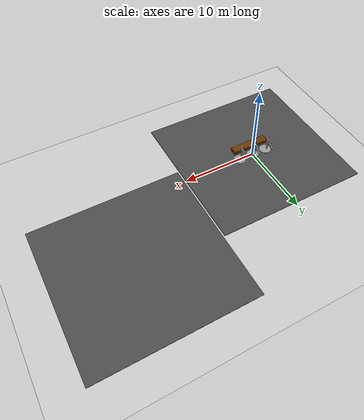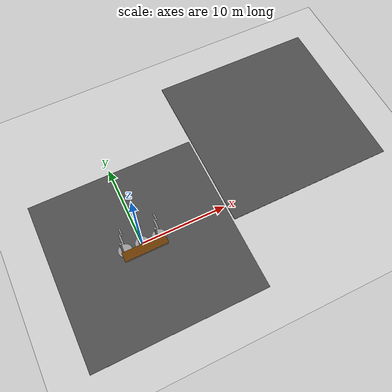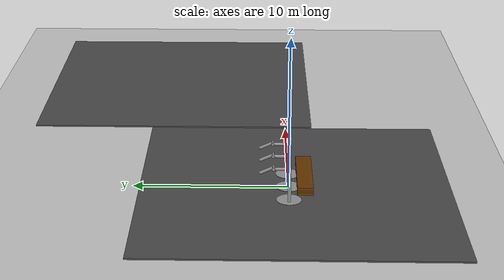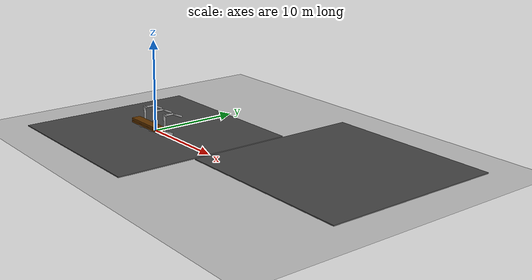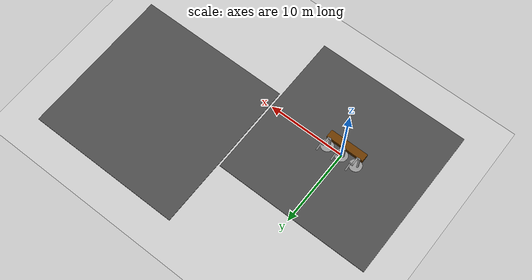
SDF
<sdf version="1.6">
 <world name="default">
  <light name="sun" type="directional">
   <pose>0 0 10 0 -0 0</pose>
   <diffuse>0.8 0.8 0.8 1</diffuse>
   <specular>0.2 0.2 0.2 1</specular>
   <attenuation>
    <range>1000</range>
    <constant>0.9</constant>
    <linear>0.01</linear>
    <quadratic>0.001</quadratic>
   </attenuation>
   <direction>-0.5 0.1 -0.9</direction>
  </light>
  <model name="ground_plane">
   <static>1</static>
   <link name="link">
    <collision name="collision">
     <geometry><plane><normal>0 0 1</normal><size>100 100</size></plane></geometry>
     <surface><friction><ode><mu>100</mu><mu2>50</mu2></ode></friction></surface>
    </collision>
    <visual name="visual">
     <cast_shadows>0</cast_shadows>
     <geometry><plane><normal>0 0 1</normal><size>100 100</size></plane></geometry>
     <material>
      <script><uri>file://media/materials/scripts/gazebo.material</uri><name>Gazebo/Grey</name></script>
     </material>
    </visual>
   </link>
  </model>
  <model name="pendulum_thick_mud">
   <link name="base">
    <inertial>
     <mass>100</mass>
     <inertia><ixx>1</ixx><ixy>0</ixy><ixz>0</ixz><iyy>1</iyy><iyz>0</iyz><izz>1</izz></inertia>
    </inertial>
    <visual name="vis_plate_on_ground">
     <pose>0 0 0.01 0 -0 0</pose>
     <geometry><cylinder><radius>0.8</radius><length>0.02</length></cylinder></geometry>
     <material>
      <script><uri>file://media/materials/scripts/gazebo.material</uri><name>Gazebo/Grey</name></script>
     </material>
    </visual>
    <visual name="vis_pole">
     <pose>-0.275 0 1.1 0 -0 0</pose>
     <geometry><box><size>0.2 0.2 2.2</size></box></geometry>
     <material>
      <script><uri>file://media/materials/scripts/gazebo.material</uri><name>Gazebo/Grey</name></script>
     </material>
    </visual>
    <collision name="col_plate_on_ground">
     <pose>0 0 0.01 0 -0 0</pose>
     <geometry><cylinder><radius>0.8</radius><length>0.02</length></cylinder></geometry>
    </collision>
    <collision name="col_pole">
     <pose>-0.275 0 1.1 0 -0 0</pose>
     <geometry><box><size>0.2 0.2 2.2</size></box></geometry>
    </collision>
   </link>
   <link name="upper_link">
    <pose>0 0 2.1 -1.5708 0 0</pose>
    <inertial>
     <pose>0 0 0.5 0 -0 0</pose>
     <inertia><ixx>1</ixx><ixy>0</ixy><ixz>0</ixz><iyy>1</iyy><iyz>0</iyz><izz>1</izz></inertia>
     <mass>1</mass>
    </inertial>
    <visual name="vis_upper_joint">
     <pose>-0.05 0 0 3.14159 1.57079 3.14159</pose>
     <geometry><cylinder><radius>0.1</radius><length>0.3</length></cylinder></geometry>
     <material>
      <script><uri>file://media/materials/scripts/gazebo.material</uri><name>Gazebo/Grey</name></script>
     </material>
    </visual>
    <visual name="vis_lower_joint">
     <pose>0 0 1 3.14159 1.57079 3.14159</pose>
     <geometry><cylinder><radius>0.1</radius><length>0.2</length></cylinder></geometry>
     <material>
      <script><uri>file://media/materials/scripts/gazebo.material</uri><name>Gazebo/Grey</name></script>
     </material>
    </visual>
    <visual name="vis_cylinder">
     <pose>0 0 0.5 0 -0 0</pose>
     <geometry><cylinder><radius>0.1</radius><length>0.9</length></cylinder></geometry>
     <material>
      <script><uri>file://media/materials/scripts/gazebo.material</uri><name>Gazebo/Grey</name></script>
     </material>
    </visual>
    <collision name="col_upper_joint">
     <pose>-0.05 0 0 3.14159 1.57079 3.14159</pose>
     <geometry><cylinder><radius>0.1</radius><length>0.3</length></cylinder></geometry>
    </collision>
    <collision name="col_lower_joint">
     <pose>0 0 1 3.14159 1.57079 3.14159</pose>
     <geometry><cylinder><radius>0.1</radius><length>0.2</length></cylinder></geometry>
    </collision>
    <collision name="col_cylinder">
     <pose>0 0 0.5 0 -0 0</pose>
     <geometry><cylinder><radius>0.1</radius><length>0.9</length></cylinder></geometry>
    </collision>
   </link>
   <link name="lower_link">
    <pose>0.25 1 2.1 -2 0 0</pose>
    <inertial>
     <pose>0 0 0.5 0 -0 0</pose>
     <inertia><ixx>1</ixx><ixy>0</ixy><ixz>0</ixz><iyy>1</iyy><iyz>0</iyz><izz>1</izz></inertia>
     <mass>1</mass>
    </inertial>
    <visual name="vis_lower_joint">
     <pose>0 0 0 3.14159 1.57079 3.14159</pose>
     <geometry><cylinder><radius>0.08</radius><length>0.3</length></cylinder></geometry>
     <material>
      <script><uri>file://media/materials/scripts/gazebo.material</uri><name>Gazebo/Grey</name></script>
     </material>
    </visual>
    <visual name="vis_cylinder">
     <pose>0 0 0.5 0 -0 0</pose>
     <geometry><cylinder><radius>0.1</radius><length>0.9</length></cylinder></geometry>
     <material>
      <script><uri>file://media/materials/scripts/gazebo.material</uri><name>Gazebo/Grey</name></script>
     </material>
    </visual>
    <collision name="col_lower_joint">
     <pose>0 0 0 3.14159 1.57079 3.14159</pose>
     <geometry><cylinder><radius>0.08</radius><length>0.3</length></cylinder></geometry>
    </collision>
    <collision name="col_cylinder">
     <pose>0 0 0.5 0 -0 0</pose>
     <geometry><cylinder><radius>0.1</radius><length>0.9</length></cylinder></geometry>
    </collision>
   </link>
   <joint name="upper_joint" type="revolute">
    <parent>base</parent>
    <child>upper_link</child>
    <axis>
     <xyz>1 0 0</xyz>
     <use_parent_model_frame>0</use_parent_model_frame>
     <limit><lower>-1e+16</lower><upper>1e+16</upper></limit>
     <dynamics><spring_reference>0</spring_reference><spring_stiffness>0</spring_stiffness></dynamics>
    </axis>
   </joint>
   <joint name="lower_joint" type="revolute">
    <parent>upper_link</parent>
    <child>lower_link</child>
    <axis>
     <xyz>1 0 0</xyz>
     <use_parent_model_frame>0</use_parent_model_frame>
     <limit><lower>-1e+16</lower><upper>1e+16</upper></limit>
     <dynamics><spring_reference>0</spring_reference><spring_stiffness>0</spring_stiffness></dynamics>
    </axis>
   </joint>
   <pose>-2.00121 -0.000308 0.050016 1.1e-05 -1.3e-05 -0.007501</pose>
  </model>
  <model name="pendulum_thin_mud">
   <link name="base">
    <inertial>
     <mass>100</mass>
     <inertia><ixx>1</ixx><ixy>0</ixy><ixz>0</ixz><iyy>1</iyy><iyz>0</iyz><izz>1</izz></inertia>
    </inertial>
    <visual name="vis_plate_on_ground">
     <pose>0 0 0.01 0 -0 0</pose>
     <geometry><cylinder><radius>0.8</radius><length>0.02</length></cylinder></geometry>
     <material>
      <script><uri>file://media/materials/scripts/gazebo.material</uri><name>Gazebo/Grey</name></script>
     </material>
    </visual>
    <visual name="vis_pole">
     <pose>-0.275 0 1.1 0 -0 0</pose>
     <geometry><box><size>0.2 0.2 2.2</size></box></geometry>
     <material>
      <script><uri>file://media/materials/scripts/gazebo.material</uri><name>Gazebo/Grey</name></script>
     </material>
    </visual>
    <collision name="col_plate_on_ground">
     <pose>0 0 0.01 0 -0 0</pose>
     <geometry><cylinder><radius>0.8</radius><length>0.02</length></cylinder></geometry>
    </collision>
    <collision name="col_pole">
     <pose>-0.275 0 1.1 0 -0 0</pose>
     <geometry><box><size>0.2 0.2 2.2</size></box></geometry>
    </collision>
   </link>
   <link name="upper_link">
    <pose>0 0 2.1 -1.5708 0 0</pose>
    <inertial>
     <pose>0 0 0.5 0 -0 0</pose>
     <inertia><ixx>1</ixx><ixy>0</ixy><ixz>0</ixz><iyy>1</iyy><iyz>0</iyz><izz>1</izz></inertia>
     <mass>1</mass>
    </inertial>
    <visual name="vis_upper_joint">
     <pose>-0.05 0 0 3.14159 1.57079 3.14159</pose>
     <geometry><cylinder><radius>0.1</radius><length>0.3</length></cylinder></geometry>
     <material>
      <script><uri>file://media/materials/scripts/gazebo.material</uri><name>Gazebo/Grey</name></script>
     </material>
    </visual>
    <visual name="vis_lower_joint">
     <pose>0 0 1 3.14159 1.57079 3.14159</pose>
     <geometry><cylinder><radius>0.1</radius><length>0.2</length></cylinder></geometry>
     <material>
      <script><uri>file://media/materials/scripts/gazebo.material</uri><name>Gazebo/Grey</name></script>
     </material>
    </visual>
    <visual name="vis_cylinder">
     <pose>0 0 0.5 0 -0 0</pose>
     <geometry><cylinder><radius>0.1</radius><length>0.9</length></cylinder></geometry>
     <material>
      <script><uri>file://media/materials/scripts/gazebo.material</uri><name>Gazebo/Grey</name></script>
     </material>
    </visual>
    <collision name="col_upper_joint">
     <pose>-0.05 0 0 3.14159 1.57079 3.14159</pose>
     <geometry><cylinder><radius>0.1</radius><length>0.3</length></cylinder></geometry>
    </collision>
    <collision name="col_lower_joint">
     <pose>0 0 1 3.14159 1.57079 3.14159</pose>
     <geometry><cylinder><radius>0.1</radius><length>0.2</length></cylinder></geometry>
    </collision>
    <collision name="col_cylinder">
     <pose>0 0 0.5 0 -0 0</pose>
     <geometry><cylinder><radius>0.1</radius><length>0.9</length></cylinder></geometry>
    </collision>
   </link>
   <link name="lower_link">
    <pose>0.25 1 2.1 -2 0 0</pose>
    <inertial>
     <pose>0 0 0.5 0 -0 0</pose>
     <inertia><ixx>1</ixx><ixy>0</ixy><ixz>0</ixz><iyy>1</iyy><iyz>0</iyz><izz>1</izz></inertia>
     <mass>1</mass>
    </inertial>
    <visual name="vis_lower_joint">
     <pose>0 0 0 3.14159 1.57079 3.14159</pose>
     <geometry><cylinder><radius>0.08</radius><length>0.3</length></cylinder></geometry>
     <material>
      <script><uri>file://media/materials/scripts/gazebo.material</uri><name>Gazebo/Grey</name></script>
     </material>
    </visual>
    <visual name="vis_cylinder">
     <pose>0 0 0.5 0 -0 0</pose>
     <geometry><cylinder><radius>0.1</radius><length>0.9</length></cylinder></geometry>
     <material>
      <script><uri>file://media/materials/scripts/gazebo.material</uri><name>Gazebo/Grey</name></script>
     </material>
    </visual>
    <collision name="col_lower_joint">
     <pose>0 0 0 3.14159 1.57079 3.14159</pose>
     <geometry><cylinder><radius>0.08</radius><length>0.3</length></cylinder></geometry>
    </collision>
    <collision name="col_cylinder">
     <pose>0 0 0.5 0 -0 0</pose>
     <geometry><cylinder><radius>0.1</radius><length>0.9</length></cylinder></geometry>
    </collision>
   </link>
   <joint name="upper_joint" type="revolute">
    <parent>base</parent>
    <child>upper_link</child>
    <axis>
     <xyz>1 0 0</xyz>
     <use_parent_model_frame>0</use_parent_model_frame>
     <limit><lower>-1e+16</lower><upper>1e+16</upper></limit>
     <dynamics><spring_reference>0</spring_reference><spring_stiffness>0</spring_stiffness></dynamics>
    </axis>
   </joint>
   <joint name="lower_joint" type="revolute">
    <parent>upper_link</parent>
    <child>lower_link</child>
    <axis>
     <xyz>1 0 0</xyz>
     <use_parent_model_frame>0</use_parent_model_frame>
     <limit><lower>-1e+16</lower><upper>1e+16</upper></limit>
     <dynamics><spring_reference>0</spring_reference><spring_stiffness>0</spring_stiffness></dynamics>
    </axis>
   </joint>
   <pose>-0.001613 -0.000877 0.050012 -4e-06 -1.5e-05 -0.009462</pose>
  </model>
  <model name="pendulum_no_mud">
   <link name="base">
    <inertial>
     <mass>100</mass>
     <inertia><ixx>1</ixx><ixy>0</ixy><ixz>0</ixz><iyy>1</iyy><iyz>0</iyz><izz>1</izz></inertia>
    </inertial>
    <visual name="vis_plate_on_ground">
     <pose>0 0 0.01 0 -0 0</pose>
     <geometry><cylinder><radius>0.8</radius><length>0.02</length></cylinder></geometry>
     <material>
      <script><uri>file://media/materials/scripts/gazebo.material</uri><name>Gazebo/Grey</name></script>
     </material>
    </visual>
    <visual name="vis_pole">
     <pose>-0.275 0 1.1 0 -0 0</pose>
     <geometry><box><size>0.2 0.2 2.2</size></box></geometry>
     <material>
      <script><uri>file://media/materials/scripts/gazebo.material</uri><name>Gazebo/Grey</name></script>
     </material>
    </visual>
    <collision name="col_plate_on_ground">
     <pose>0 0 0.01 0 -0 0</pose>
     <geometry><cylinder><radius>0.8</radius><length>0.02</length></cylinder></geometry>
    </collision>
    <collision name="col_pole">
     <pose>-0.275 0 1.1 0 -0 0</pose>
     <geometry><box><size>0.2 0.2 2.2</size></box></geometry>
    </collision>
   </link>
   <link name="upper_link">
    <pose>0 0 2.1 -1.5708 0 0</pose>
    <inertial>
     <pose>0 0 0.5 0 -0 0</pose>
     <inertia><ixx>1</ixx><ixy>0</ixy><ixz>0</ixz><iyy>1</iyy><iyz>0</iyz><izz>1</izz></inertia>
     <mass>1</mass>
    </inertial>
    <visual name="vis_upper_joint">
     <pose>-0.05 0 0 3.14159 1.57079 3.14159</pose>
     <geometry><cylinder><radius>0.1</radius><length>0.3</length></cylinder></geometry>
     <material>
      <script><uri>file://media/materials/scripts/gazebo.material</uri><name>Gazebo/Grey</name></script>
     </material>
    </visual>
    <visual name="vis_lower_joint">
     <pose>0 0 1 3.14159 1.57079 3.14159</pose>
     <geometry><cylinder><radius>0.1</radius><length>0.2</length></cylinder></geometry>
     <material>
      <script><uri>file://media/materials/scripts/gazebo.material</uri><name>Gazebo/Grey</name></script>
     </material>
    </visual>
    <visual name="vis_cylinder">
     <pose>0 0 0.5 0 -0 0</pose>
     <geometry><cylinder><radius>0.1</radius><length>0.9</length></cylinder></geometry>
     <material>
      <script><uri>file://media/materials/scripts/gazebo.material</uri><name>Gazebo/Grey</name></script>
     </material>
    </visual>
    <collision name="col_upper_joint">
     <pose>-0.05 0 0 3.14159 1.57079 3.14159</pose>
     <geometry><cylinder><radius>0.1</radius><length>0.3</length></cylinder></geometry>
    </collision>
    <collision name="col_lower_joint">
     <pose>0 0 1 3.14159 1.57079 3.14159</pose>
     <geometry><cylinder><radius>0.1</radius><length>0.2</length></cylinder></geometry>
    </collision>
    <collision name="col_cylinder">
     <pose>0 0 0.5 0 -0 0</pose>
     <geometry><cylinder><radius>0.1</radius><length>0.9</length></cylinder></geometry>
    </collision>
   </link>
   <link name="lower_link">
    <pose>0.25 1 2.1 -2 0 0</pose>
    <inertial>
     <pose>0 0 0.5 0 -0 0</pose>
     <inertia><ixx>1</ixx><ixy>0</ixy><ixz>0</ixz><iyy>1</iyy><iyz>0</iyz><izz>1</izz></inertia>
     <mass>1</mass>
    </inertial>
    <visual name="vis_lower_joint">
     <pose>0 0 0 3.14159 1.57079 3.14159</pose>
     <geometry><cylinder><radius>0.08</radius><length>0.3</length></cylinder></geometry>
     <material>
      <script><uri>file://media/materials/scripts/gazebo.material</uri><name>Gazebo/Grey</name></script>
     </material>
    </visual>
    <visual name="vis_cylinder">
     <pose>0 0 0.5 0 -0 0</pose>
     <geometry><cylinder><radius>0.1</radius><length>0.9</length></cylinder></geometry>
     <material>
      <script><uri>file://media/materials/scripts/gazebo.material</uri><name>Gazebo/Grey</name></script>
     </material>
    </visual>
    <collision name="col_lower_joint">
     <pose>0 0 0 3.14159 1.57079 3.14159</pose>
     <geometry><cylinder><radius>0.08</radius><length>0.3</length></cylinder></geometry>
    </collision>
    <collision name="col_cylinder">
     <pose>0 0 0.5 0 -0 0</pose>
     <geometry><cylinder><radius>0.1</radius><length>0.9</length></cylinder></geometry>
    </collision>
   </link>
   <joint name="upper_joint" type="revolute">
    <parent>base</parent>
    <child>upper_link</child>
    <axis>
     <xyz>1 0 0</xyz>
     <use_parent_model_frame>0</use_parent_model_frame>
     <limit><lower>-1e+16</lower><upper>1e+16</upper></limit>
     <dynamics><spring_reference>0</spring_reference><spring_stiffness>0</spring_stiffness></dynamics>
    </axis>
   </joint>
   <joint name="lower_joint" type="revolute">
    <parent>upper_link</parent>
    <child>lower_link</child>
    <axis>
     <xyz>1 0 0</xyz>
     <use_parent_model_frame>0</use_parent_model_frame>
     <limit><lower>-1e+16</lower><upper>1e+16</upper></limit>
     <dynamics><spring_reference>0</spring_reference><spring_stiffness>0</spring_stiffness></dynamics>
    </axis>
   </joint>
   <pose>1.99594 -0.00099 0.050002 7e-06 1.5e-05 -0.014104</pose>
  </model>
  <model name="mud_pit_thin">
   <pose>0 -1 0.7 0 -0 0</pose>
   <static>1</static>
   <link name="link">
    <collision name="collision">
     <geometry><box><size>5 1 0.2</size></box></geometry>
     <surface><contact><collide_without_contact>1</collide_without_contact></contact></surface>
    </collision>
    <visual name="visual">
     <geometry><box><size>5 1 0.2</size></box></geometry>
     <material><ambient>0.2 0.2 0.2 1</ambient><diffuse>0.421 0.225 0 1</diffuse></material>
    </visual>
    <sensor name="mud_contact" type="contact">
     <always_on>1</always_on>
     <update_rate>1000</update_rate>
     <contact><collision>collision</collision><topic>__default_topic__</topic></contact>
    </sensor>
   </link>
   <plugin name="gazebo_mud" filename="libMudPlugin.so">
    <contact_sensor_name>link/mud_contact</contact_sensor_name>
    <stiffness>0.0</stiffness>
    <damping>1.0</damping>
    <link_name>pendulum_thin_mud::lower_link</link_name>
    <link_name>pendulum_thick_mud::lower_link</link_name>
   </plugin>
  </model>
  <model name="mud_pit_thick">
   <pose>0 -1 1 0 -0 0</pose>
   <static>1</static>
   <link name="link">
    <collision name="collision">
     <geometry><box><size>5 1 0.2</size></box></geometry>
     <surface><contact><collide_without_contact>1</collide_without_contact></contact></surface>
    </collision>
    <visual name="visual">
     <geometry><box><size>5 1 0.2</size></box></geometry>
     <material><ambient>0.2 0.2 0.2 1</ambient><diffuse>0.421 0.225 0 1</diffuse></material>
    </visual>
    <sensor name="mud_contact" type="contact">
     <always_on>1</always_on>
     <update_rate>1000</update_rate>
     <contact><collision>collision</collision><topic>__default_topic__</topic></contact>
    </sensor>
   </link>
   <plugin name="gazebo_mud" filename="libMudPlugin.so">
    <contact_sensor_name>link/mud_contact</contact_sensor_name>
    <stiffness>0.0</stiffness>
    <damping>10.0</damping>
    <link_name>pendulum_thick_mud::lower_link</link_name>
   </plugin>
  </model>
  <gravity>0 0 -9.8</gravity>
  <magnetic_field>6e-06 2.3e-05 -4.2e-05</magnetic_field>
  <atmosphere type="adiabatic"/>
  <physics name="default_physics" default="0" type="ode">
   <max_step_size>0.001</max_step_size>
   <real_time_factor>1</real_time_factor>
   <real_time_update_rate>1000</real_time_update_rate>
  </physics>
  <scene><ambient>0.4 0.4 0.4 1</ambient><background>0.7 0.7 0.7 1</background><shadows>1</shadows></scene>
  <spherical_coordinates>
   <surface_model>EARTH_WGS84</surface_model>
   <latitude_deg>0</latitude_deg>
   <longitude_deg>0</longitude_deg>
   <elevation>0</elevation>
   <heading_deg>0</heading_deg>
  </spherical_coordinates>
  <model name="asphalt_plane">
   <static>1</static>
   <link name="link">
    <collision name="collision"><geometry><box><size>20 20 0.1</size></box></geometry></collision>
    <visual name="visual">
     <cast_shadows>0</cast_shadows>
     <geometry><box><size>20 20 0.1</size></box></geometry>
     <material>
      <script>
       <uri>model://asphalt_plane/materials/scripts</uri>
       <uri>model://asphalt_plane/materials/textures</uri>
       <name>vrc/asphalt</name>
      </script>
     </material>
    </visual>
   </link>
   <pose>0.059311 -0.418769 0 0 -0 0</pose>
  </model>
  <model name="asphalt_plane_0">
   <static>1</static>
   <link name="link">
    <collision name="collision"><geometry><box><size>20 20 0.1</size></box></geometry></collision>
    <visual name="visual">
     <cast_shadows>0</cast_shadows>
     <geometry><box><size>20 20 0.1</size></box></geometry>
     <material>
      <script>
       <uri>model://asphalt_plane/materials/scripts</uri>
       <uri>model://asphalt_plane/materials/textures</uri>
       <name>vrc/asphalt</name>
      </script>
     </material>
    </visual>
   </link>
   <pose>20.2979 8.10519 0 0 -0 0</pose>
  </model>
 </world>
</sdf>
